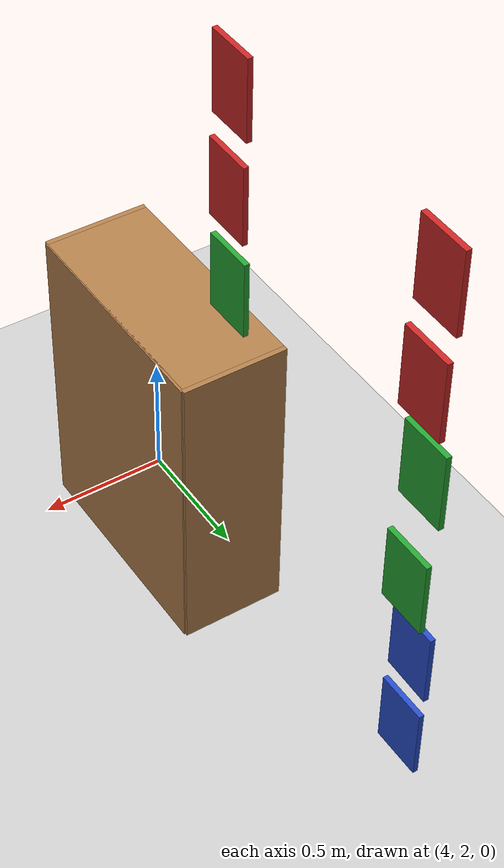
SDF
<sdf version="1.6">
 <world name="default">
  <model name="ground_plane">
   <static>1</static>
   <link name="link">
    <collision name="collision">
     <geometry><plane><normal>0 0 1</normal><size>100 100</size></plane></geometry>
     <surface><friction><ode><mu>100</mu><mu2>50</mu2></ode></friction></surface>
    </collision>
    <visual name="visual">
     <cast_shadows>0</cast_shadows>
     <geometry><plane><normal>0 0 1</normal><size>100 100</size></plane></geometry>
     <material>
      <script><uri>file://media/materials/scripts/gazebo.material</uri><name>Gazebo/Grey</name></script>
     </material>
    </visual>
   </link>
  </model>
  <model name="bookshelf_4_clone_0">
   <static>1</static>
   <link name="link">
    <inertial><mass>1</mass></inertial>
    <collision name="back">
     <pose>0 0.005 0.6 0 -0 0</pose>
     <geometry><box><size>0.9 0.01 1.2</size></box></geometry>
    </collision>
    <visual name="visual1">
     <pose>0 0.005 0.6 0 -0 0</pose>
     <geometry><box><size>0.9 0.01 1.2</size></box></geometry>
     <material>
      <script><uri>file://media/materials/scripts/gazebo.material</uri><name>Gazebo/Wood</name></script>
     </material>
    </visual>
    <collision name="left_side">
     <pose>0.45 -0.195 0.6 0 -0 0</pose>
     <geometry><box><size>0.02 0.4 1.2</size></box></geometry>
    </collision>
    <visual name="visual2">
     <pose>0.45 -0.195 0.6 0 -0 0</pose>
     <geometry><box><size>0.02 0.4 1.2</size></box></geometry>
     <material>
      <script><uri>file://media/materials/scripts/gazebo.material</uri><name>Gazebo/Wood</name></script>
     </material>
    </visual>
    <collision name="right_side">
     <pose>-0.45 -0.195 0.6 0 -0 0</pose>
     <geometry><box><size>0.02 0.4 1.2</size></box></geometry>
    </collision>
    <visual name="visual3">
     <pose>-0.45 -0.195 0.6 0 -0 0</pose>
     <geometry><box><size>0.02 0.4 1.2</size></box></geometry>
     <material>
      <script><uri>file://media/materials/scripts/gazebo.material</uri><name>Gazebo/Wood</name></script>
     </material>
    </visual>
    <collision name="bottom">
     <pose>0 -0.195 0.03 0 -0 0</pose>
     <geometry><box><size>0.88 0.4 0.06</size></box></geometry>
    </collision>
    <visual name="visual4">
     <pose>0 -0.195 0.03 0 -0 0</pose>
     <geometry><box><size>0.88 0.4 0.06</size></box></geometry>
     <material>
      <script><uri>file://media/materials/scripts/gazebo.material</uri><name>Gazebo/Wood</name></script>
     </material>
    </visual>
    <collision name="top">
     <pose>0 -0.195 1.19 0 -0 0</pose>
     <geometry><box><size>0.88 0.4 0.02</size></box></geometry>
    </collision>
    <visual name="visual5">
     <pose>0 -0.195 1.19 0 -0 0</pose>
     <geometry><box><size>0.88 0.4 0.02</size></box></geometry>
     <material>
      <script><uri>file://media/materials/scripts/gazebo.material</uri><name>Gazebo/Wood</name></script>
     </material>
    </visual>
    <collision name="low_shelf">
     <pose>0 -0.195 0.43 0 -0 0</pose>
     <geometry><box><size>0.88 0.4 0.02</size></box></geometry>
    </collision>
    <visual name="visual6">
     <pose>0 -0.195 0.43 0 -0 0</pose>
     <geometry><box><size>0.88 0.4 0.02</size></box></geometry>
     <material>
      <script><uri>file://media/materials/scripts/gazebo.material</uri><name>Gazebo/Wood</name></script>
     </material>
    </visual>
    <collision name="high_shelf">
     <pose>0 -0.195 0.8 0 -0 0</pose>
     <geometry><box><size>0.88 0.4 0.02</size></box></geometry>
    </collision>
    <visual name="visual7">
     <pose>0 -0.195 0.8 0 -0 0</pose>
     <geometry><box><size>0.88 0.4 0.02</size></box></geometry>
     <material>
      <script><uri>file://media/materials/scripts/gazebo.material</uri><name>Gazebo/Wood</name></script>
     </material>
    </visual>
   </link>
   <pose>4.37565 2.36025 0 0 0 -1.5727</pose>
  </model>
  <model name="bluecube_0_clone_clone_9_clone_11_clone_clone_0">
   <static>1</static>
   <link name="link">
    <pose>0 0 0.21 0 -0 0</pose>
    <collision name="collision"><geometry><box><size>0.2 0.02 0.3</size></box></geometry></collision>
    <visual name="visual">
     <geometry><box><size>0.2 0.02 0.3</size></box></geometry>
     <material>
      <script><uri>file://media/materials/scripts/gazebo.material</uri><name>Gazebo/Blue</name></script>
     </material>
    </visual>
   </link>
   <pose>4.08828 2.67294 0 0 -0 1.57146</pose>
  </model>
  <model name="bluecube_0_clone_clone_9_clone_11_clone_clone_1">
   <static>1</static>
   <link name="link">
    <pose>0 0 0.21 0 -0 0</pose>
    <collision name="collision"><geometry><box><size>0.2 0.02 0.3</size></box></geometry></collision>
    <visual name="visual">
     <geometry><box><size>0.2 0.02 0.3</size></box></geometry>
     <material>
      <script><uri>file://media/materials/scripts/gazebo.material</uri><name>Gazebo/Blue</name></script>
     </material>
    </visual>
   </link>
   <pose>4.0927 2.36032 0 0 -0 1.57146</pose>
  </model>
  <model name="bluecube_0_clone_clone_9_clone_11_clone_clone_21">
   <static>1</static>
   <link name="link">
    <pose>0 0 0.21 0 -0 0</pose>
    <collision name="collision"><geometry><box><size>0.2 0.02 0.3</size></box></geometry></collision>
    <visual name="visual">
     <geometry><box><size>0.2 0.02 0.3</size></box></geometry>
     <material>
      <script><uri>file://media/materials/scripts/gazebo.material</uri><name>Gazebo/Blue</name></script>
     </material>
    </visual>
   </link>
   <pose>4.07424 3.68188 0 0 -0 1.57146</pose>
  </model>
  <model name="bluecube_0_clone_clone_10_clone_clone_21_clone_clone_0">
   <static>1</static>
   <link name="link">
    <pose>0 0 0.21 0 -0 0</pose>
    <collision name="collision"><geometry><box><size>0.2 0.02 0.3</size></box></geometry></collision>
    <visual name="visual">
     <geometry><box><size>0.2 0.02 0.3</size></box></geometry>
     <material>
      <script><uri>file://media/materials/scripts/gazebo.material</uri><name>Gazebo/Blue</name></script>
     </material>
    </visual>
   </link>
   <pose>4.06461 3.68448 0.38097 0 -0 1.5507</pose>
  </model>
  <model name="bluecube_0_clone_clone_10_clone_clone_21_clone_clone_1">
   <static>1</static>
   <link name="link">
    <pose>0 0 0.21 0 -0 0</pose>
    <collision name="collision"><geometry><box><size>0.2 0.02 0.3</size></box></geometry></collision>
    <visual name="visual">
     <geometry><box><size>0.2 0.02 0.3</size></box></geometry>
     <material>
      <script><uri>file://media/materials/scripts/gazebo.material</uri><name>Gazebo/Blue</name></script>
     </material>
    </visual>
   </link>
   <pose>4.07067 2.66646 0.38097 0 -0 1.5507</pose>
  </model>
  <model name="bluecube_0_clone_clone_10_clone_clone_21_clone_clone_2">
   <static>1</static>
   <link name="link">
    <pose>0 0 0.21 0 -0 0</pose>
    <collision name="collision"><geometry><box><size>0.2 0.02 0.3</size></box></geometry></collision>
    <visual name="visual">
     <geometry><box><size>0.2 0.02 0.3</size></box></geometry>
     <material>
      <script><uri>file://media/materials/scripts/gazebo.material</uri><name>Gazebo/Blue</name></script>
     </material>
    </visual>
   </link>
   <pose>4.07271 2.35847 0.38097 0 -0 1.5507</pose>
  </model>
  <model name="greencube_clone_clone_22_clone_clone">
   <static>1</static>
   <link name="link">
    <pose>0 0 0.21 0 -0 0</pose>
    <collision name="collision"><geometry><box><size>0.2 0.02 0.3</size></box></geometry></collision>
    <visual name="visual">
     <geometry><box><size>0.2 0.02 0.3</size></box></geometry>
     <material>
      <script><uri>file://media/materials/scripts/gazebo.material</uri><name>Gazebo/Green</name></script>
     </material>
    </visual>
   </link>
   <pose>4.11581 3.68432 0.751098 0 -0 1.56837</pose>
  </model>
  <model name="greencube_clone_clone_22_clone_clone_1">
   <static>1</static>
   <link name="link">
    <pose>0 0 0.21 0 -0 0</pose>
    <collision name="collision"><geometry><box><size>0.2 0.02 0.3</size></box></geometry></collision>
    <visual name="visual">
     <geometry><box><size>0.2 0.02 0.3</size></box></geometry>
     <material>
      <script><uri>file://media/materials/scripts/gazebo.material</uri><name>Gazebo/Green</name></script>
     </material>
    </visual>
   </link>
   <pose>4.10289 2.66656 0.751098 0 -0 1.56837</pose>
  </model>
  <model name="greencube_clone_clone_22_clone_clone_2">
   <static>1</static>
   <link name="link">
    <pose>0 0 0.21 0 -0 0</pose>
    <collision name="collision"><geometry><box><size>0.2 0.02 0.3</size></box></geometry></collision>
    <visual name="visual">
     <geometry><box><size>0.2 0.02 0.3</size></box></geometry>
     <material>
      <script><uri>file://media/materials/scripts/gazebo.material</uri><name>Gazebo/Green</name></script>
     </material>
    </visual>
   </link>
   <pose>4.10965 2.35917 0.751098 0 -0 1.56837</pose>
  </model>
  <model name="greencube_clone_clone_22_clone_clone_10_clone_clone_clone_12">
   <static>1</static>
   <link name="link">
    <pose>0 0 0.21 0 -0 0</pose>
    <collision name="collision"><geometry><box><size>0.2 0.02 0.3</size></box></geometry></collision>
    <visual name="visual">
     <geometry><box><size>0.2 0.02 0.3</size></box></geometry>
     <material>
      <script><uri>file://media/materials/scripts/gazebo.material</uri><name>Gazebo/Green</name></script>
     </material>
    </visual>
   </link>
   <pose>4.09341 3.69107 1.21098 0 -0 1.56837</pose>
  </model>
  <model name="greencube_clone_clone_22_clone_clone_10_clone_clone_clone_13">
   <static>1</static>
   <link name="link">
    <pose>0 0 0.21 0 -0 0</pose>
    <collision name="collision"><geometry><box><size>0.2 0.02 0.3</size></box></geometry></collision>
    <visual name="visual">
     <geometry><box><size>0.2 0.02 0.3</size></box></geometry>
     <material>
      <script><uri>file://media/materials/scripts/gazebo.material</uri><name>Gazebo/Green</name></script>
     </material>
    </visual>
   </link>
   <pose>4.10701 2.66235 1.21098 0 -0 1.56837</pose>
  </model>
  <model name="redcube_clone_clone_22_clone_clone_12">
   <static>1</static>
   <link name="link">
    <pose>0 0 0.21 0 -0 0</pose>
    <collision name="collision"><geometry><box><size>0.2 0.02 0.3</size></box></geometry></collision>
    <visual name="visual">
     <geometry><box><size>0.2 0.02 0.3</size></box></geometry>
     <material>
      <script><uri>file://media/materials/scripts/gazebo.material</uri><name>Gazebo/Red</name></script>
     </material>
    </visual>
   </link>
   <pose>4.12538 3.6897 1.58534 0 -0 1.55372</pose>
  </model>
  <model name="redcube_clone_clone_22_clone_clone_13">
   <static>1</static>
   <link name="link">
    <pose>0 0 0.21 0 -0 0</pose>
    <collision name="collision"><geometry><box><size>0.2 0.02 0.3</size></box></geometry></collision>
    <visual name="visual">
     <geometry><box><size>0.2 0.02 0.3</size></box></geometry>
     <material>
      <script><uri>file://media/materials/scripts/gazebo.material</uri><name>Gazebo/Red</name></script>
     </material>
    </visual>
   </link>
   <pose>4.10913 2.65478 1.58534 0 -0 1.55372</pose>
  </model>
  <model name="redcube_clone_clone_22_clone_clone_22_clone_clone_4">
   <static>1</static>
   <link name="link">
    <pose>0 0 0.21 0 -0 0</pose>
    <collision name="collision"><geometry><box><size>0.2 0.02 0.3</size></box></geometry></collision>
    <visual name="visual">
     <geometry><box><size>0.2 0.02 0.3</size></box></geometry>
     <material>
      <script><uri>file://media/materials/scripts/gazebo.material</uri><name>Gazebo/Red</name></script>
     </material>
    </visual>
   </link>
   <pose>4.08812 2.63721 1.95914 0 -0 1.55372</pose>
  </model>
  <model name="redcube_clone_clone_22_clone_clone_22_clone_clone_9">
   <static>1</static>
   <link name="link">
    <pose>0 0 0.21 0 -0 0</pose>
    <collision name="collision"><geometry><box><size>0.2 0.02 0.3</size></box></geometry></collision>
    <visual name="visual">
     <geometry><box><size>0.2 0.02 0.3</size></box></geometry>
     <material>
      <script><uri>file://media/materials/scripts/gazebo.material</uri><name>Gazebo/Red</name></script>
     </material>
    </visual>
   </link>
   <pose>4.09692 3.67944 1.95914 0 -0 1.55372</pose>
  </model>
 </world>
</sdf>
